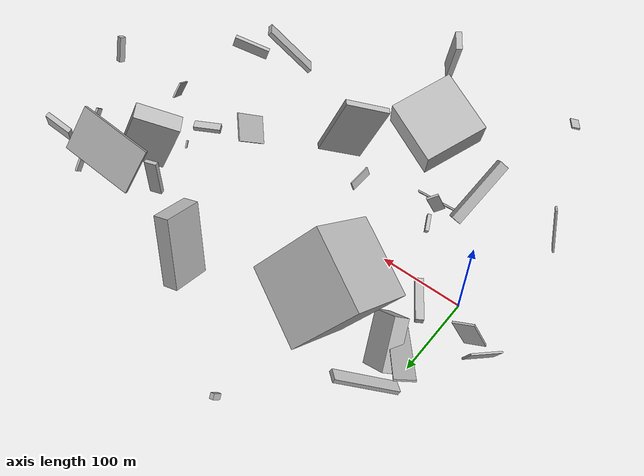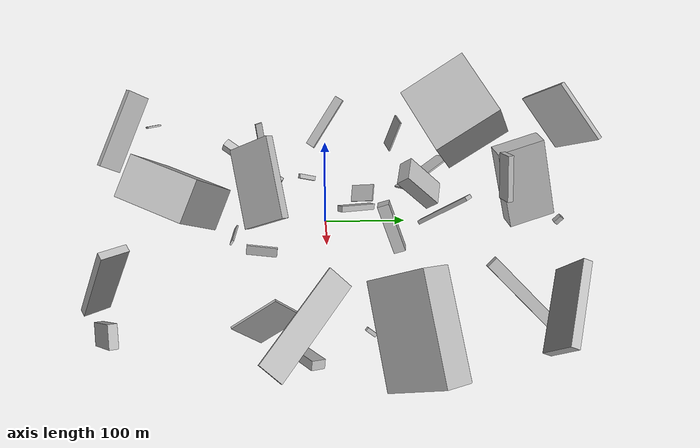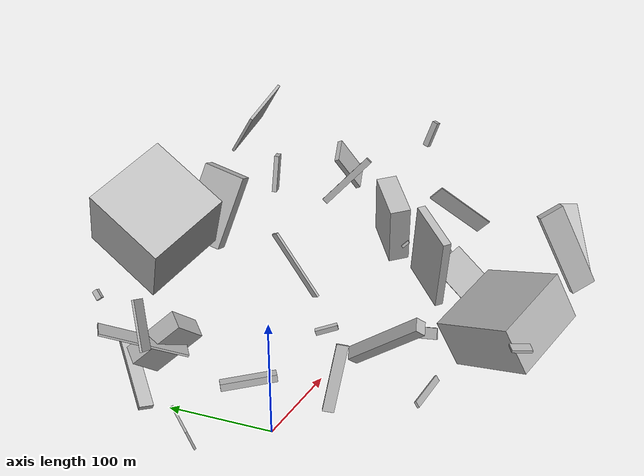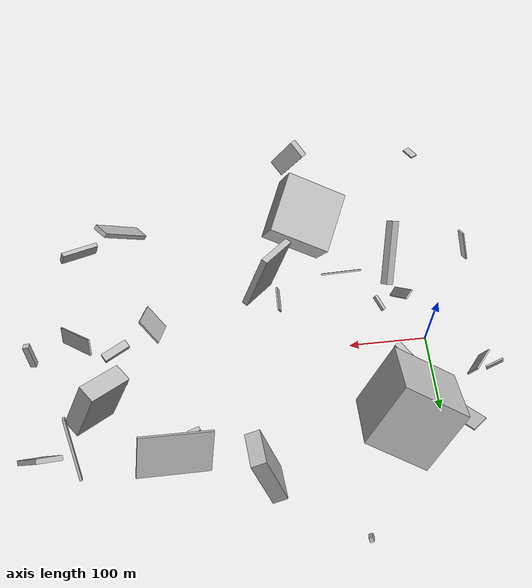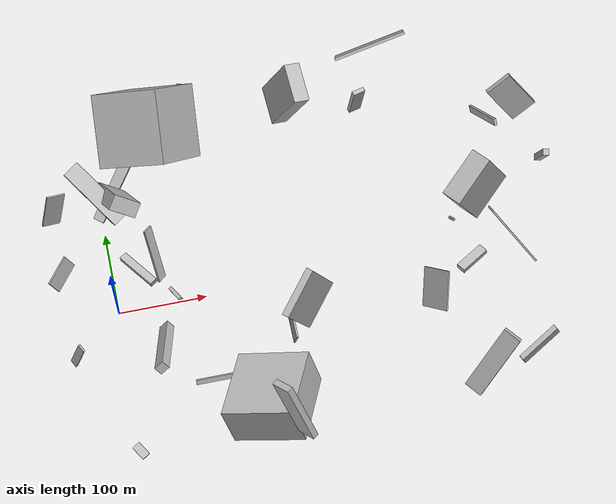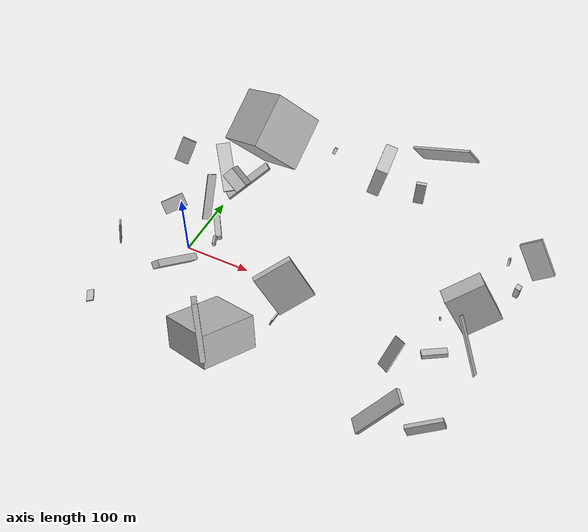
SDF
<sdf version="1.6">
 <world name="default">
  <scene>
   <sky><clouds><speed>12</speed></clouds></sky>
   <ambient>0.4 0.4 0.4 1</ambient>
   <background>0.7 0.7 0.7 1</background>
   <shadows>1</shadows>
  </scene>
  <gravity>0 0 -9.8066</gravity>
  <magnetic_field>6e-06 2.3e-05 -4.2e-05</magnetic_field>
  <physics default="0" name="default_physics" type="ode">
   <ode>
    <solver>
     <type>quick</type>
     <iters>10</iters>
     <sor>1.0</sor>
     <use_dynamic_moi_rescaling>0</use_dynamic_moi_rescaling>
    </solver>
    <constraints>
     <cfm>0</cfm>
     <erp>0.2</erp>
     <contact_max_correcting_vel>100</contact_max_correcting_vel>
     <contact_surface_layer>0.001</contact_surface_layer>
    </constraints>
   </ode>
   <max_step_size>0.004</max_step_size>
   <real_time_factor>1</real_time_factor>
   <real_time_update_rate>250</real_time_update_rate>
  </physics>
  <light name="sun" type="directional">
   <pose>0 0 10 0 0 0</pose>
   <diffuse>0.8 0.8 0.8 1</diffuse>
   <specular>0.2 0.2 0.2 1</specular>
   <attenuation>
    <range>1000</range>
    <constant>0.9</constant>
    <linear>0.01</linear>
    <quadratic>0.001</quadratic>
   </attenuation>
   <direction>-0.5 0.1 -0.9</direction>
  </light>
  <model name="building_1">
   <static>0</static>
   <pose>-48.18692528858169 90.0287548871828 104.08506337522954 1.0458884221459988 -1.141670129323642 0.815249569719844</pose>
   <link name="link">
    <gravity>0</gravity>
    <pose>0 0 1.0 0 0 0</pose>
    <collision name="collision"><geometry><box><size>42 21 2</size></box></geometry></collision>
    <visual name="visual">
     <cast_shadows>0</cast_shadows>
     <geometry><box><size>42 21 2</size></box></geometry>
     <material>
      <script>
       <uri>model://HANNAS_wall/materials/scripts</uri>
       <uri>model://HANNAS_wall/materials/textures</uri>
       <name>vrc/HANNAS_wall</name>
      </script>
     </material>
    </visual>
   </link>
  </model>
  <model name="building_2">
   <static>0</static>
   <pose>30.521057227593715 37.19979150728331 21.80216608200786 0.04674660652585461 -0.0844570763531185 -0.9676054291056577</pose>
   <link name="link">
    <gravity>0</gravity>
    <pose>0 0 3.5 0 0 0</pose>
    <collision name="collision"><geometry><box><size>50 9 7</size></box></geometry></collision>
    <visual name="visual">
     <cast_shadows>0</cast_shadows>
     <geometry><box><size>50 9 7</size></box></geometry>
     <material>
      <script>
       <uri>model://HANNAS_wall/materials/scripts</uri>
       <uri>model://HANNAS_wall/materials/textures</uri>
       <name>vrc/HANNAS_wall</name>
      </script>
     </material>
    </visual>
   </link>
  </model>
  <model name="building_3">
   <static>0</static>
   <pose>221.21689106169788 180.77698742322852 103.16366659178152 1.830856643491808 -0.2946665940849593 1.639549877597544</pose>
   <link name="link">
    <gravity>0</gravity>
    <pose>0 0 9.0 0 0 0</pose>
    <collision name="collision"><geometry><box><size>44 80 18</size></box></geometry></collision>
    <visual name="visual">
     <cast_shadows>0</cast_shadows>
     <geometry><box><size>44 80 18</size></box></geometry>
     <material>
      <script>
       <uri>model://HANNAS_wall/materials/scripts</uri>
       <uri>model://HANNAS_wall/materials/textures</uri>
       <name>vrc/HANNAS_wall</name>
      </script>
     </material>
    </visual>
   </link>
  </model>
  <model name="building_4">
   <static>0</static>
   <pose>328.1661223735083 194.51066156272617 152.8896220572488 0.28503451022744575 0.5684504876603287 -1.3389914334769233</pose>
   <link name="link">
    <gravity>0</gravity>
    <pose>0 0 25.0 0 0 0</pose>
    <collision name="collision"><geometry><box><size>3 80 50</size></box></geometry></collision>
    <visual name="visual">
     <cast_shadows>0</cast_shadows>
     <geometry><box><size>3 80 50</size></box></geometry>
     <material>
      <script>
       <uri>model://HANNAS_wall/materials/scripts</uri>
       <uri>model://HANNAS_wall/materials/textures</uri>
       <name>vrc/HANNAS_wall</name>
      </script>
     </material>
    </visual>
   </link>
  </model>
  <model name="building_5">
   <static>0</static>
   <pose>362.704681256537 -62.79132458111019 26.525078703766905 -2.3649866481167434 0.59973522744413 0.2474412000250653</pose>
   <link name="link">
    <gravity>0</gravity>
    <pose>0 0 18.5 0 0 0</pose>
    <collision name="collision"><geometry><box><size>2 45 37</size></box></geometry></collision>
    <visual name="visual">
     <cast_shadows>0</cast_shadows>
     <geometry><box><size>2 45 37</size></box></geometry>
     <material>
      <script>
       <uri>model://HANNAS_wall/materials/scripts</uri>
       <uri>model://HANNAS_wall/materials/textures</uri>
       <name>vrc/HANNAS_wall</name>
      </script>
     </material>
    </visual>
   </link>
  </model>
  <model name="building_6">
   <static>0</static>
   <pose>446.0969117102627 -20.41440999673148 53.27849273257891 2.1185749916229986 -0.759022408300675 -1.556961267055531</pose>
   <link name="link">
    <gravity>0</gravity>
    <pose>0 0 1.0 0 0 0</pose>
    <collision name="collision"><geometry><box><size>20 80 2</size></box></geometry></collision>
    <visual name="visual">
     <cast_shadows>0</cast_shadows>
     <geometry><box><size>20 80 2</size></box></geometry>
     <material>
      <script>
       <uri>model://HANNAS_wall/materials/scripts</uri>
       <uri>model://HANNAS_wall/materials/textures</uri>
       <name>vrc/HANNAS_wall</name>
      </script>
     </material>
    </visual>
   </link>
  </model>
  <model name="building_7">
   <static>0</static>
   <pose>34.05513837649544 111.67596922206116 42.63266173288034 0.8411171517095913 0.5297413996006606 -2.2393401341905004</pose>
   <link name="link">
    <gravity>0</gravity>
    <pose>0 0 16.5 0 0 0</pose>
    <collision name="collision"><geometry><box><size>18 55 33</size></box></geometry></collision>
    <visual name="visual">
     <cast_shadows>0</cast_shadows>
     <geometry><box><size>18 55 33</size></box></geometry>
     <material>
      <script>
       <uri>model://HANNAS_wall/materials/scripts</uri>
       <uri>model://HANNAS_wall/materials/textures</uri>
       <name>vrc/HANNAS_wall</name>
      </script>
     </material>
    </visual>
   </link>
  </model>
  <model name="building_8">
   <static>0</static>
   <pose>375.4689394169706 -160.15594838056438 62.67967619149597 1.709411572612825 -0.8352855439796173 0.5726780205592816</pose>
   <link name="link">
    <gravity>0</gravity>
    <pose>0 0 10.5 0 0 0</pose>
    <collision name="collision"><geometry><box><size>80 6 21</size></box></geometry></collision>
    <visual name="visual">
     <cast_shadows>0</cast_shadows>
     <geometry><box><size>80 6 21</size></box></geometry>
     <material>
      <script>
       <uri>model://HANNAS_wall/materials/scripts</uri>
       <uri>model://HANNAS_wall/materials/textures</uri>
       <name>vrc/HANNAS_wall</name>
      </script>
     </material>
    </visual>
   </link>
  </model>
  <model name="building_9">
   <static>0</static>
   <pose>-59.24821444977515 52.00105334378897 33.184329303787614 -2.9565936295462807 -0.3538261971104367 -0.7597103355656</pose>
   <link name="link">
    <gravity>0</gravity>
    <pose>0 0 11.0 0 0 0</pose>
    <collision name="collision"><geometry><box><size>2 35 22</size></box></geometry></collision>
    <visual name="visual">
     <cast_shadows>0</cast_shadows>
     <geometry><box><size>2 35 22</size></box></geometry>
     <material>
      <script>
       <uri>model://HANNAS_wall/materials/scripts</uri>
       <uri>model://HANNAS_wall/materials/textures</uri>
       <name>vrc/HANNAS_wall</name>
      </script>
     </material>
    </visual>
   </link>
  </model>
  <model name="building_10">
   <static>0</static>
   <pose>65.75137935994194 -22.31758565872439 68.51278936245676 0.27037059181469286 0.22273093390240475 -2.625731103624738</pose>
   <link name="link">
    <gravity>0</gravity>
    <pose>0 0 2.5 0 0 0</pose>
    <collision name="collision"><geometry><box><size>4 20 5</size></box></geometry></collision>
    <visual name="visual">
     <cast_shadows>0</cast_shadows>
     <geometry><box><size>4 20 5</size></box></geometry>
     <material>
      <script>
       <uri>model://HANNAS_wall/materials/scripts</uri>
       <uri>model://HANNAS_wall/materials/textures</uri>
       <name>vrc/HANNAS_wall</name>
      </script>
     </material>
    </visual>
   </link>
  </model>
  <model name="building_11">
   <static>0</static>
   <pose>386.9797244182838 -31.227741032008012 9.52272641058333 1.3705854380055478 -1.4538470501616318 2.3047975943169066</pose>
   <link name="link">
    <gravity>0</gravity>
    <pose>0 0 18.0 0 0 0</pose>
    <collision name="collision"><geometry><box><size>7 11 36</size></box></geometry></collision>
    <visual name="visual">
     <cast_shadows>0</cast_shadows>
     <geometry><box><size>7 11 36</size></box></geometry>
     <material>
      <script>
       <uri>model://HANNAS_wall/materials/scripts</uri>
       <uri>model://HANNAS_wall/materials/textures</uri>
       <name>vrc/HANNAS_wall</name>
      </script>
     </material>
    </visual>
   </link>
  </model>
  <model name="building_12">
   <static>0</static>
   <pose>-0.6975389555534086 -208.21727147376063 120.55231272567724 -0.09560934612342499 0.15096715073908856 -2.601076572113889</pose>
   <link name="link">
    <gravity>0</gravity>
    <pose>0 0 1.0 0 0 0</pose>
    <collision name="collision"><geometry><box><size>9 16 2</size></box></geometry></collision>
    <visual name="visual">
     <cast_shadows>0</cast_shadows>
     <geometry><box><size>9 16 2</size></box></geometry>
     <material>
      <script>
       <uri>model://HANNAS_wall/materials/scripts</uri>
       <uri>model://HANNAS_wall/materials/textures</uri>
       <name>vrc/HANNAS_wall</name>
      </script>
     </material>
    </visual>
   </link>
  </model>
  <model name="building_13">
   <static>0</static>
   <pose>481.7536925695912 35.44939322555027 115.14906611603094 0.16436907604707585 -0.32605235275505007 1.372582866398518</pose>
   <link name="link">
    <gravity>0</gravity>
    <pose>0 0 15.5 0 0 0</pose>
    <collision name="collision"><geometry><box><size>7 7 31</size></box></geometry></collision>
    <visual name="visual">
     <cast_shadows>0</cast_shadows>
     <geometry><box><size>7 7 31</size></box></geometry>
     <material>
      <script>
       <uri>model://HANNAS_wall/materials/scripts</uri>
       <uri>model://HANNAS_wall/materials/textures</uri>
       <name>vrc/HANNAS_wall</name>
      </script>
     </material>
    </visual>
   </link>
  </model>
  <model name="building_14">
   <static>0</static>
   <pose>-50.603909076704205 -77.09847598725709 94.34475395261221 -2.5436879501580414 1.292004491508649 2.675808204105877</pose>
   <link name="link">
    <gravity>0</gravity>
    <pose>0 0 4.5 0 0 0</pose>
    <collision name="collision"><geometry><box><size>53 2 9</size></box></geometry></collision>
    <visual name="visual">
     <cast_shadows>0</cast_shadows>
     <geometry><box><size>53 2 9</size></box></geometry>
     <material>
      <script>
       <uri>model://HANNAS_wall/materials/scripts</uri>
       <uri>model://HANNAS_wall/materials/textures</uri>
       <name>vrc/HANNAS_wall</name>
      </script>
     </material>
    </visual>
   </link>
  </model>
  <model name="building_15">
   <static>0</static>
   <pose>126.41781393199616 -195.1897665935818 81.84817905978765 1.8476334179115381 0.3487703309926431 2.8099025310546573</pose>
   <link name="link">
    <gravity>0</gravity>
    <pose>0 0 40.0 0 0 0</pose>
    <collision name="collision"><geometry><box><size>80 46 80</size></box></geometry></collision>
    <visual name="visual">
     <cast_shadows>0</cast_shadows>
     <geometry><box><size>80 46 80</size></box></geometry>
     <material>
      <script>
       <uri>model://HANNAS_wall/materials/scripts</uri>
       <uri>model://HANNAS_wall/materials/textures</uri>
       <name>vrc/HANNAS_wall</name>
      </script>
     </material>
    </visual>
   </link>
  </model>
  <model name="building_16">
   <static>0</static>
   <pose>51.15595555224735 -1.2692979908342394 133.26421785375663 -2.394258734338668 -0.9970466629781208 1.7357113176424102</pose>
   <link name="link">
    <gravity>0</gravity>
    <pose>0 0 1.0 0 0 0</pose>
    <collision name="collision"><geometry><box><size>64 12 2</size></box></geometry></collision>
    <visual name="visual">
     <cast_shadows>0</cast_shadows>
     <geometry><box><size>64 12 2</size></box></geometry>
     <material>
      <script>
       <uri>model://HANNAS_wall/materials/scripts</uri>
       <uri>model://HANNAS_wall/materials/textures</uri>
       <name>vrc/HANNAS_wall</name>
      </script>
     </material>
    </visual>
   </link>
  </model>
  <model name="building_17">
   <static>0</static>
   <pose>447.3391097952546 125.46690665663021 68.43041898543068 1.580726888536958 -0.7723376757879772 1.7094505372668363</pose>
   <link name="link">
    <gravity>0</gravity>
    <pose>0 0 1.5 0 0 0</pose>
    <collision name="collision"><geometry><box><size>8 80 3</size></box></geometry></collision>
    <visual name="visual">
     <cast_shadows>0</cast_shadows>
     <geometry><box><size>8 80 3</size></box></geometry>
     <material>
      <script>
       <uri>model://HANNAS_wall/materials/scripts</uri>
       <uri>model://HANNAS_wall/materials/textures</uri>
       <name>vrc/HANNAS_wall</name>
      </script>
     </material>
    </visual>
   </link>
  </model>
  <model name="building_18">
   <static>0</static>
   <pose>214.77007386635387 -60.38481513166431 57.457293322823546 0.3760640654909934 -0.1102681675240906 -0.7785262016753438</pose>
   <link name="link">
    <gravity>0</gravity>
    <pose>0 0 40.0 0 0 0</pose>
    <collision name="collision"><geometry><box><size>8 55 80</size></box></geometry></collision>
    <visual name="visual">
     <cast_shadows>0</cast_shadows>
     <geometry><box><size>8 55 80</size></box></geometry>
     <material>
      <script>
       <uri>model://HANNAS_wall/materials/scripts</uri>
       <uri>model://HANNAS_wall/materials/textures</uri>
       <name>vrc/HANNAS_wall</name>
      </script>
     </material>
    </visual>
   </link>
  </model>
  <model name="building_19">
   <static>0</static>
   <pose>65.56715310161611 114.46926253631787 123.44717453435854 -0.647126009553899 0.8087162645135808 0.6809695030579995</pose>
   <link name="link">
    <gravity>0</gravity>
    <pose>0 0 40.0 0 0 0</pose>
    <collision name="collision"><geometry><box><size>80 80 80</size></box></geometry></collision>
    <visual name="visual">
     <cast_shadows>0</cast_shadows>
     <geometry><box><size>80 80 80</size></box></geometry>
     <material>
      <script>
       <uri>model://HANNAS_wall/materials/scripts</uri>
       <uri>model://HANNAS_wall/materials/textures</uri>
       <name>vrc/HANNAS_wall</name>
      </script>
     </material>
    </visual>
   </link>
  </model>
  <model name="building_20">
   <static>0</static>
   <pose>-23.221708037447303 151.26630284780273 77.27976597947598 3.098020411456678 1.1869800149296532 2.1800130597562077</pose>
   <link name="link">
    <gravity>0</gravity>
    <pose>0 0 40.0 0 0 0</pose>
    <collision name="collision"><geometry><box><size>2 21 80</size></box></geometry></collision>
    <visual name="visual">
     <cast_shadows>0</cast_shadows>
     <geometry><box><size>2 21 80</size></box></geometry>
     <material>
      <script>
       <uri>model://HANNAS_wall/materials/scripts</uri>
       <uri>model://HANNAS_wall/materials/textures</uri>
       <name>vrc/HANNAS_wall</name>
      </script>
     </material>
    </visual>
   </link>
  </model>
  <model name="building_21">
   <static>0</static>
   <pose>116.38167241847755 253.7969697931968 27.9862949395731 -0.673819043927492 0.3723565100470841 0.1219448722662402</pose>
   <link name="link">
    <gravity>0</gravity>
    <pose>0 0 5.0 0 0 0</pose>
    <collision name="collision"><geometry><box><size>5 6 10</size></box></geometry></collision>
    <visual name="visual">
     <cast_shadows>0</cast_shadows>
     <geometry><box><size>5 6 10</size></box></geometry>
     <material>
      <script>
       <uri>model://HANNAS_wall/materials/scripts</uri>
       <uri>model://HANNAS_wall/materials/textures</uri>
       <name>vrc/HANNAS_wall</name>
      </script>
     </material>
    </visual>
   </link>
  </model>
  <model name="building_22">
   <static>0</static>
   <pose>42.402679047298335 172.21314941237415 39.194008533384576 -2.920861565413554 1.0047132921745368 1.0797580221737273</pose>
   <link name="link">
    <gravity>0</gravity>
    <pose>0 0 40.0 0 0 0</pose>
    <collision name="collision"><geometry><box><size>5 13 80</size></box></geometry></collision>
    <visual name="visual">
     <cast_shadows>0</cast_shadows>
     <geometry><box><size>5 13 80</size></box></geometry>
     <material>
      <script>
       <uri>model://HANNAS_wall/materials/scripts</uri>
       <uri>model://HANNAS_wall/materials/textures</uri>
       <name>vrc/HANNAS_wall</name>
      </script>
     </material>
    </visual>
   </link>
  </model>
  <model name="building_23">
   <static>0</static>
   <pose>48.88426246753074 -53.542240915572805 60.133010055982545 0.8025512351804196 0.6241824945707087 -0.7216742307376202</pose>
   <link name="link">
    <gravity>0</gravity>
    <pose>0 0 40.0 0 0 0</pose>
    <collision name="collision"><geometry><box><size>10 12 80</size></box></geometry></collision>
    <visual name="visual">
     <cast_shadows>0</cast_shadows>
     <geometry><box><size>10 12 80</size></box></geometry>
     <material>
      <script>
       <uri>model://HANNAS_wall/materials/scripts</uri>
       <uri>model://HANNAS_wall/materials/textures</uri>
       <name>vrc/HANNAS_wall</name>
      </script>
     </material>
    </visual>
   </link>
  </model>
  <model name="building_24">
   <static>0</static>
   <pose>303.7321609471738 143.63891816012838 119.851341912413 0.7349180835808695 1.4594665571552556 2.583596082889449</pose>
   <link name="link">
    <gravity>0</gravity>
    <pose>0 0 2.5 0 0 0</pose>
    <collision name="collision"><geometry><box><size>40 14 5</size></box></geometry></collision>
    <visual name="visual">
     <cast_shadows>0</cast_shadows>
     <geometry><box><size>40 14 5</size></box></geometry>
     <material>
      <script>
       <uri>model://HANNAS_wall/materials/scripts</uri>
       <uri>model://HANNAS_wall/materials/textures</uri>
       <name>vrc/HANNAS_wall</name>
      </script>
     </material>
    </visual>
   </link>
  </model>
  <model name="building_25">
   <static>0</static>
   <pose>444.5991327480073 72.88324132055793 50.05063656737731 -2.8786982776563566 -1.1378733175186981 -2.741094637343749</pose>
   <link name="link">
    <gravity>0</gravity>
    <pose>0 0 29.5 0 0 0</pose>
    <collision name="collision"><geometry><box><size>80 24 59</size></box></geometry></collision>
    <visual name="visual">
     <cast_shadows>0</cast_shadows>
     <geometry><box><size>80 24 59</size></box></geometry>
     <material>
      <script>
       <uri>model://HANNAS_wall/materials/scripts</uri>
       <uri>model://HANNAS_wall/materials/textures</uri>
       <name>vrc/HANNAS_wall</name>
      </script>
     </material>
    </visual>
   </link>
  </model>
  <model name="building_26">
   <static>0</static>
   <pose>161.4858406048108 -202.47959204776257 139.26747250168955 -1.5565813390213126 0.4528611693608105 2.2364618243200227</pose>
   <link name="link">
    <gravity>0</gravity>
    <pose>0 0 3.5 0 0 0</pose>
    <collision name="collision"><geometry><box><size>22 80 7</size></box></geometry></collision>
    <visual name="visual">
     <cast_shadows>0</cast_shadows>
     <geometry><box><size>22 80 7</size></box></geometry>
     <material>
      <script>
       <uri>model://HANNAS_wall/materials/scripts</uri>
       <uri>model://HANNAS_wall/materials/textures</uri>
       <name>vrc/HANNAS_wall</name>
      </script>
     </material>
    </visual>
   </link>
  </model>
  <model name="building_27">
   <static>0</static>
   <pose>123.10612843357319 -104.29483449010063 10.901591184656363 1.533499510365021 -0.5771982275698978 -1.5469107249039755</pose>
   <link name="link">
    <gravity>0</gravity>
    <pose>0 0 27.0 0 0 0</pose>
    <collision name="collision"><geometry><box><size>2 6 54</size></box></geometry></collision>
    <visual name="visual">
     <cast_shadows>0</cast_shadows>
     <geometry><box><size>2 6 54</size></box></geometry>
     <material>
      <script>
       <uri>model://HANNAS_wall/materials/scripts</uri>
       <uri>model://HANNAS_wall/materials/textures</uri>
       <name>vrc/HANNAS_wall</name>
      </script>
     </material>
    </visual>
   </link>
  </model>
  <model name="building_28">
   <static>0</static>
   <pose>470.8026160497252 134.29266240638174 69.4980930083449 0.9905718566235665 0.37263748019927906 1.6059014488494643</pose>
   <link name="link">
    <gravity>0</gravity>
    <pose>0 0 16.0 0 0 0</pose>
    <collision name="collision"><geometry><box><size>6 55 32</size></box></geometry></collision>
    <visual name="visual">
     <cast_shadows>0</cast_shadows>
     <geometry><box><size>6 55 32</size></box></geometry>
     <material>
      <script>
       <uri>model://HANNAS_wall/materials/scripts</uri>
       <uri>model://HANNAS_wall/materials/textures</uri>
       <name>vrc/HANNAS_wall</name>
      </script>
     </material>
    </visual>
   </link>
  </model>
  <model name="building_29">
   <static>0</static>
   <pose>418.9514932580704 -163.34038515093425 37.65882839822619 -1.242848809588468 -0.060312343997559775 -1.124219952196344</pose>
   <link name="link">
    <gravity>0</gravity>
    <pose>0 0 25.0 0 0 0</pose>
    <collision name="collision"><geometry><box><size>6 16 50</size></box></geometry></collision>
    <visual name="visual">
     <cast_shadows>0</cast_shadows>
     <geometry><box><size>6 16 50</size></box></geometry>
     <material>
      <script>
       <uri>model://HANNAS_wall/materials/scripts</uri>
       <uri>model://HANNAS_wall/materials/textures</uri>
       <name>vrc/HANNAS_wall</name>
      </script>
     </material>
    </visual>
   </link>
  </model>
  <model name="building_30">
   <static>0</static>
   <pose>185.9025171227245 -52.00959367409081 19.259887471666328 -1.223116774763294 1.2312371947673804 -2.8318644735663994</pose>
   <link name="link">
    <gravity>0</gravity>
    <pose>0 0 15.5 0 0 0</pose>
    <collision name="collision"><geometry><box><size>11 2 31</size></box></geometry></collision>
    <visual name="visual">
     <cast_shadows>0</cast_shadows>
     <geometry><box><size>11 2 31</size></box></geometry>
     <material>
      <script>
       <uri>model://HANNAS_wall/materials/scripts</uri>
       <uri>model://HANNAS_wall/materials/textures</uri>
       <name>vrc/HANNAS_wall</name>
      </script>
     </material>
    </visual>
   </link>
  </model>
  <model name="building_31">
   <static>0</static>
   <pose>388.8185668355088 30.018413354109164 19.110130037470103 -0.024926238303847027 0.859582706688178 -1.187351903584676</pose>
   <link name="link">
    <gravity>0</gravity>
    <pose>0 0 5.0 0 0 0</pose>
    <collision name="collision"><geometry><box><size>3 2 10</size></box></geometry></collision>
    <visual name="visual">
     <cast_shadows>0</cast_shadows>
     <geometry><box><size>3 2 10</size></box></geometry>
     <material>
      <script>
       <uri>model://HANNAS_wall/materials/scripts</uri>
       <uri>model://HANNAS_wall/materials/textures</uri>
       <name>vrc/HANNAS_wall</name>
      </script>
     </material>
    </visual>
   </link>
  </model>
 </world>
</sdf>
